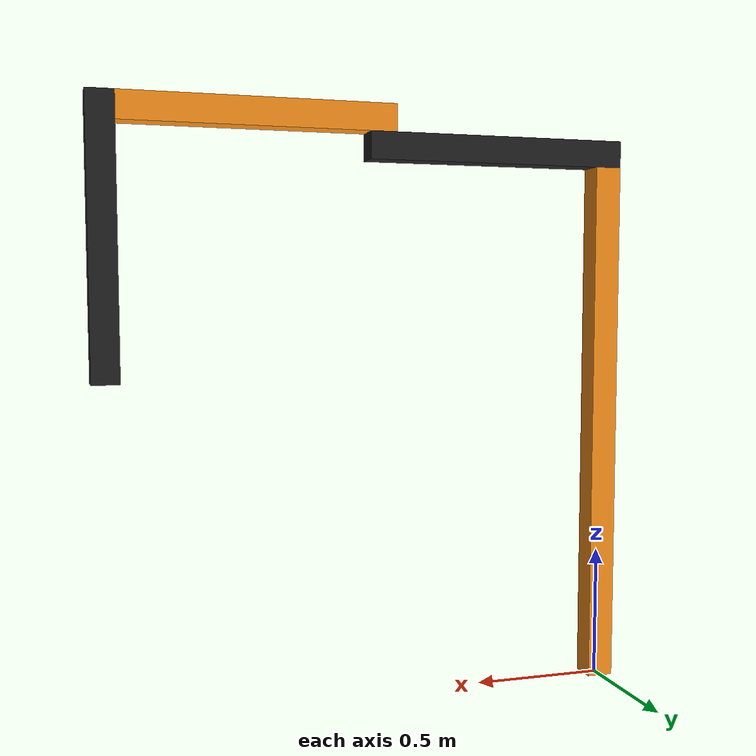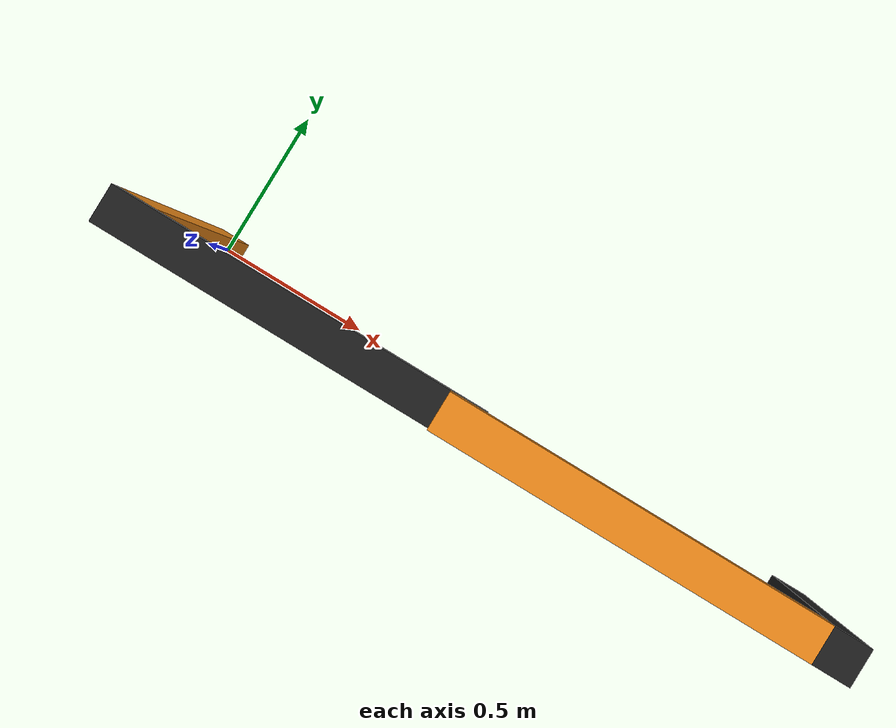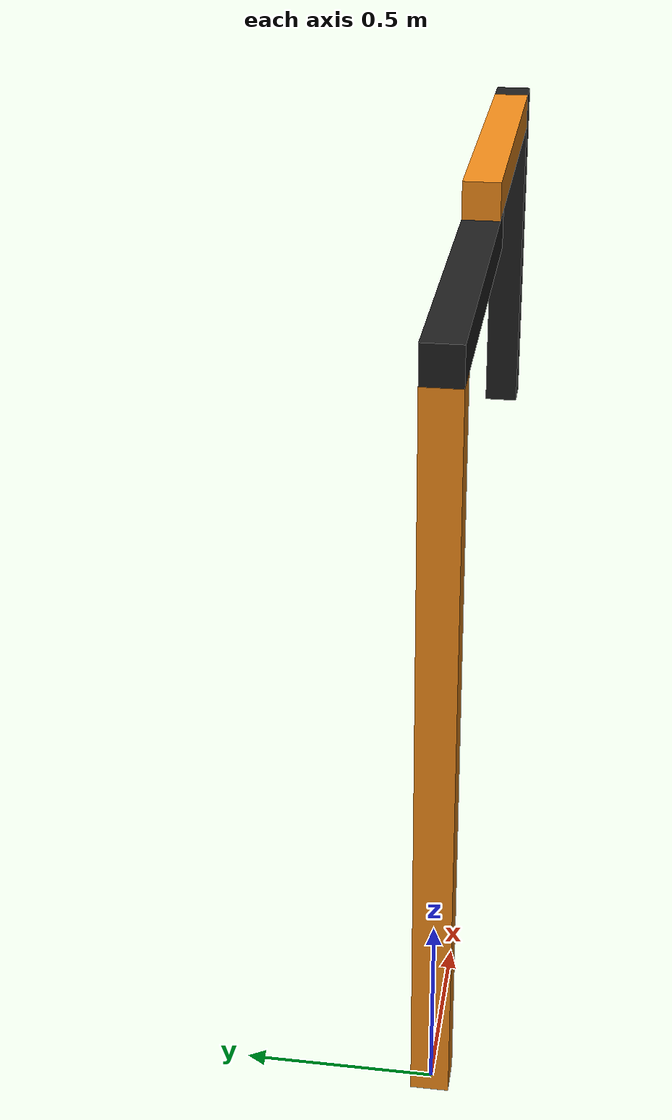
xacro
<?xml version="1.0"?>
<!-- Revolute-Revolute Manipulator -->
<robot name="rrbot" xmlns:xacro="http://www.ros.org/wiki/xacro">

  <!-- Constants for robot dimensions -->
  <xacro:property name="PI" value="3.1415926535897931"/>
  <xacro:property name="mass" value="1" /> <!-- arbitrary value for mass -->
  <xacro:property name="width" value="0.1" /> <!-- Square dimensions (widthxwidth) of beams -->
  <xacro:property name="height1" value="2" /> <!-- Link 1 -->
  <xacro:property name="height2" value="1" /> <!-- Link 2 -->
  <xacro:property name="height3" value="1" /> <!-- Link 3 -->
  <xacro:property name="camera_link" value="0.05" /> <!-- Size of square 'camera' box -->
  <xacro:property name="axel_offset" value="0.05" /> <!-- Space btw top of beam and the each joint -->

  <!-- Import all Gazebo-customization elements, including Gazebo colors -->
  <xacro:include filename="$(find scara_description)/urdf/scara.gazebo" />
  <!-- Import Rviz colors -->
  <xacro:include filename="$(find scara_description)/urdf/materials.xacro" />

  <!-- Used for fixing robot to Gazebo 'base_link' -->
  <link name="world"/>

  <joint name="fixed" type="fixed">
    <parent link="world"/>
    <child link="link1"/>
  </joint>

  <!-- Base Link -->
  <link name="link1">
    <collision>
      <origin xyz="0 0 ${height1/2}" rpy="0 0 0"/>
      <geometry>
	<box size="${width} ${width} ${height1}"/>
      </geometry>
    </collision>

    <visual>
      <origin xyz="0 0 ${height1/2}" rpy="0 0 0"/>
      <geometry>
	<box size="${width} ${width} ${height1}"/>
      </geometry>
      <material name="orange"/>
    </visual>

    <inertial>
      <origin xyz="0 0 ${height1/2}" rpy="0 0 0"/>
      <mass value="${mass}"/>
      <inertia
	  ixx="${mass / 12.0 * (width*width + height1*height1)}" ixy="0.0" ixz="0.0"
	  iyy="${mass / 12.0 * (height1*height1 + width*width)}" iyz="0.0"
	  izz="${mass / 12.0 * (width*width + width*width)}"/>
    </inertial>
  </link>

  <joint name="joint1" type="continuous">
    <parent link="link1"/>
    <child link="link2"/>
    <origin xyz="0 0 ${height1}" rpy="0 0 0"/>
    <axis xyz="0 0 1"/>
    <dynamics damping="0.7"/>
  </joint>

  <!-- Middle Link -->
  <link name="link2">
    <collision>
      <origin xyz="${height2/2 - axel_offset} 0 ${axel_offset}" rpy="0 1.57075 0"/>
      <geometry>
	<box size="${width} ${width} ${height2}"/>
      </geometry>
    </collision>

    <visual>
      <origin xyz="${height2/2 - axel_offset} 0 ${axel_offset}" rpy="0 1.57075 0"/>
      <geometry>
	<box size="${width} ${width} ${height2}"/>
      </geometry>
      <material name="black"/>
    </visual>

    <inertial>
      <origin xyz="${height2/2 - axel_offset} 0 ${axel_offset}" rpy="0 1.57075 0"/>
      <mass value="${mass}"/>
      <inertia
	  ixx="${mass / 12.0 * (width*width + height2*height2)}" ixy="0.0" ixz="0.0"
	  iyy="${mass / 12.0 * (height2*height2 + width*width)}" iyz="0.0"
	  izz="${mass / 12.0 * (width*width + width*width)}"/>
    </inertial>
  </link>

  <joint name="joint2" type="continuous">
    <parent link="link2"/>
    <child link="link3"/>
    <origin xyz="${height2 - axel_offset*2} 0 ${width}" rpy="0 1.57075 0"/>
    <axis xyz="1 0 0"/>
    <dynamics damping="0.7"/>
  </joint>

  <!-- Top Link -->
  <link name="link3">
    <collision>
      <origin xyz="${-axel_offset} 0 ${height3/2 - axel_offset}" rpy="0 0 0"/>
      <geometry>
	<box size="${width} ${width} ${height3}"/>
      </geometry>
    </collision>

    <visual>
      <origin xyz="${-axel_offset} 0 ${height3/2 - axel_offset}" rpy="0 0 0"/>
      <geometry>
	<box size="${width} ${width} ${height3}"/>
      </geometry>
      <material name="orange"/>
    </visual>

    <inertial>
      <origin xyz="${-axel_offset} 0 ${height3/2 - axel_offset}" rpy="0 0 0"/>
      <mass value="${mass}"/>
      <inertia
	  ixx="${mass / 12.0 * (width*width + height3*height3)}" ixy="0.0" ixz="0.0"
	  iyy="${mass / 12.0 * (height3*height3 + width*width)}" iyz="0.0"
	  izz="${mass / 12.0 * (width*width + width*width)}"/>
    </inertial>
  </link>

  <joint name="joint3" type="prismatic">
    <parent link="link3"/>
    <child link="link4"/>
    <limit effort="1000.0" lower="-0.8" upper="0" velocity="0.5"/>
    <origin xyz="${-axel_offset} 0 ${height2 - axel_offset}" rpy="0 1.57075 0"/>
    <axis xyz="0 0 1"/>
    <dynamics damping="0.7"/>
  </joint>

  <!-- Top Link -->
  <link name="link4">
    <collision>
      <origin xyz="${-axel_offset} 0 ${height3/2 - axel_offset}" rpy="0 0 0"/>
      <geometry>
	<box size="${width} ${width} ${height3}"/>
      </geometry>
    </collision>

    <visual>
      <origin xyz="${-axel_offset} 0 ${height3/2 - axel_offset}" rpy="0 0 0"/>
      <geometry>
	<box size="${width} ${width} ${height3}"/>
      </geometry>
      <material name="black"/>
    </visual>

    <inertial>
      <origin xyz="${-axel_offset} 0 ${height3/2 - axel_offset}" rpy="0 0 0"/>
      <mass value="${mass}"/>
      <inertia
	  ixx="${mass / 12.0 * (width*width + height3*height3)}" ixy="0.0" ixz="0.0"
	  iyy="${mass / 12.0 * (height3*height3 + width*width)}" iyz="0.0"
	  izz="${mass / 12.0 * (width*width + width*width)}"/>
    </inertial>
  </link>

  <transmission name="tran1">
    <type>transmission_interface/SimpleTransmission</type>
    <joint name="joint1">
      <hardwareInterface>hardware_interface/EffortJointInterface</hardwareInterface>
    </joint>
    <actuator name="motor1">
      <hardwareInterface>hardware_interface/EffortJointInterface</hardwareInterface>
      <mechanicalReduction>1</mechanicalReduction>
    </actuator>
  </transmission>

  <transmission name="tran2">
    <type>transmission_interface/SimpleTransmission</type>
    <joint name="joint2">
      <hardwareInterface>hardware_interface/EffortJointInterface</hardwareInterface>
    </joint>
    <actuator name="motor2">
      <hardwareInterface>hardware_interface/EffortJointInterface</hardwareInterface>
      <mechanicalReduction>1</mechanicalReduction>
    </actuator>
  </transmission>

  <transmission name="tran3">
    <type>transmission_interface/SimpleTransmission</type>
    <joint name="joint3">
      <hardwareInterface>hardware_interface/EffortJointInterface</hardwareInterface>
    </joint>
    <actuator name="motor3">
      <hardwareInterface>hardware_interface/EffortJointInterface</hardwareInterface>
      <mechanicalReduction>1</mechanicalReduction>
    </actuator>
  </transmission>

</robot>
